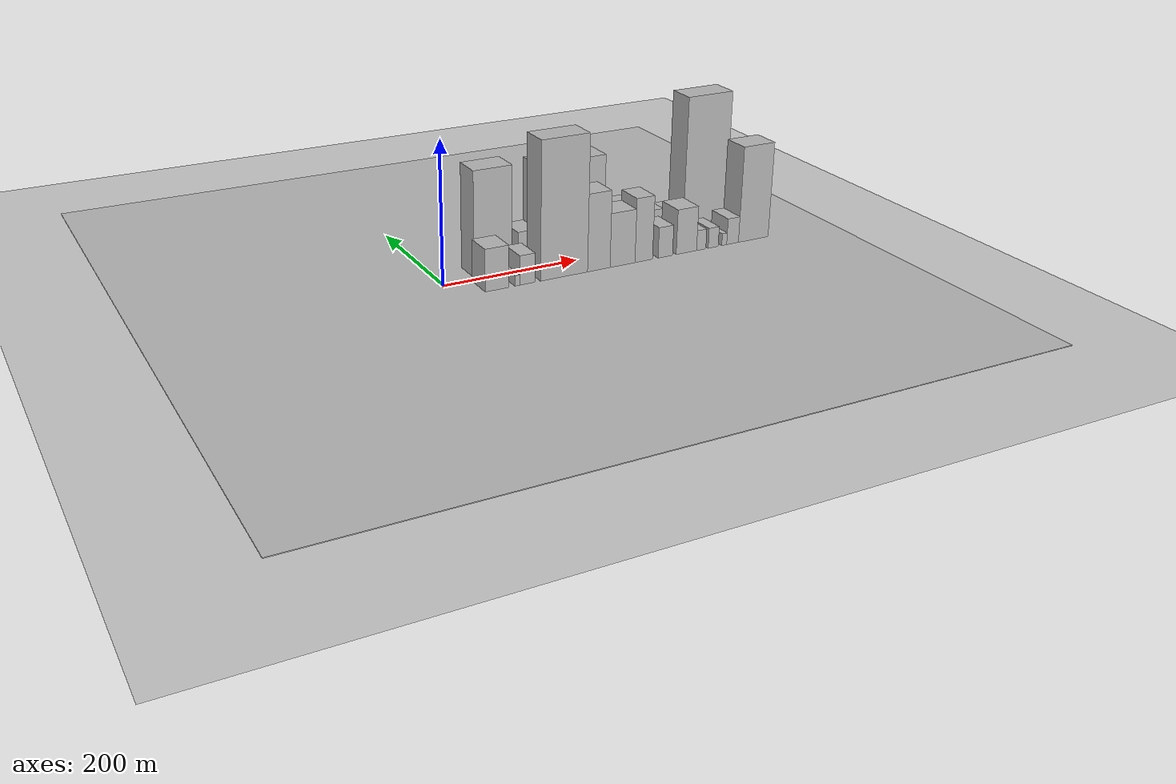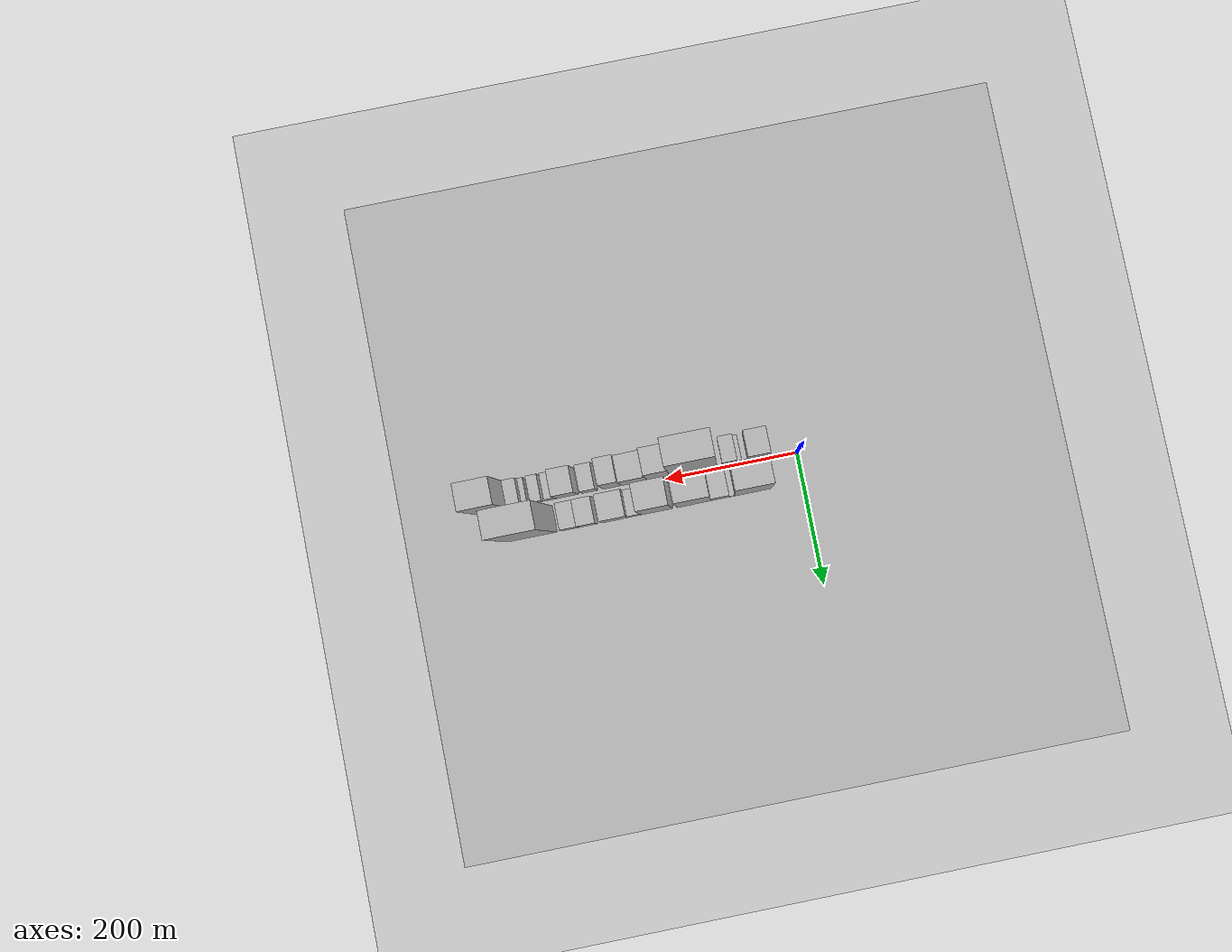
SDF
<?xml version="1.0" encoding="utf-8"?>

<sdf version="1.6">

   <world name="default">

      <gui fullscreen="0">

         <camera name="user_camera">

            <pose>-15 0 4.57585 0 0 0</pose>

            <view_controller>orbit</view_controller>

         </camera>

      </gui>

      <scene>

         <sky>

           <clouds>

             <speed>12</speed>

           </clouds>

         </sky>

         <ambient>0.4 0.4 0.4 1</ambient>

         <background>0.7 0.7 0.7 1</background>

         <shadows>1</shadows>

      </scene>

      <gravity>0 0 -9.8066</gravity>

      <magnetic_field>6e-06 2.3e-05 -4.2e-05</magnetic_field>

      <physics default="0" name="default_physics" type="ode">

         <ode>

            <solver>

               <type>quick</type>

               <iters>10</iters>

               <sor>1.0</sor>

               <use_dynamic_moi_rescaling>0</use_dynamic_moi_rescaling>

            </solver>

            <constraints>

               <cfm>0</cfm>

               <erp>0.2</erp>

               <contact_max_correcting_vel>100</contact_max_correcting_vel>

               <contact_surface_layer>0.001</contact_surface_layer>

            </constraints>

         </ode>

         <max_step_size>0.004</max_step_size>

         <real_time_factor>1</real_time_factor>

         <real_time_update_rate>250</real_time_update_rate>

      </physics>

      <light name="sun" type="directional">

         <cast_shadows>1</cast_shadows>

         <pose>0 0 10 0 0 0</pose>

         <diffuse>0.8 0.8 0.8 1</diffuse>

         <specular>0.2 0.2 0.2 1</specular>

         <attenuation>

            <range>1000</range>

            <constant>0.9</constant>

            <linear>0.01</linear>

            <quadratic>0.001</quadratic>

         </attenuation>

         <direction>-0.5 0.1 -0.9</direction>

      </light>

      <include>

         <name>ground_plane_1</name>

         <uri>model://HANNAS_ground_plane</uri>

         <pose>0 0 0  0 0 0</pose>

      </include>

      <include>

         <name>ground_plane_2</name>

         <uri>model://HANNAS_ground_plane</uri>

         <pose>100 0 0  0 0 0</pose>

      </include>

      <model name="building_1">

         <static>1</static>

         <pose frame="">75.2871 24.5000 0 0.000000 0.000000 1.570796</pose>

         <link name="link">

            <pose frame="">0 0 75.00 0 0 0</pose>

            <collision name="collision">

               <geometry>

                  <box>

                     <size>40.0000 56.5743 150.0000</size>

                  </box>

               </geometry>

               <max_contacts>10</max_contacts>

               <surface>

                  <contact>

                     <ode/>

                  </contact>

                  <bounce/>

                  <friction>

                     <torsional>

                        <ode/>

                     </torsional>

                     <ode/>

                  </friction>

               </surface>

            </collision>

            <visual name="visual">

               <cast_shadows>0</cast_shadows>

               <geometry>

                  <box>

                     <size>40.0000 56.5743 150.0000</size>

                  </box>

               </geometry>

               <material>

                  <script>

                     <uri>model://HANNAS_wall/materials/scripts</uri>

                     <uri>model://HANNAS_wall/materials/textures</uri>

                     <name>vrc/HANNAS_wall</name>

                  </script>

               </material>

            </visual>

            <self_collide>0</self_collide>

            <enable_wind>0</enable_wind>

            <kinematic>0</kinematic>

         </link>

      </model>

      <model name="building_2">

         <static>1</static>

         <pose frame="">107.8261 24.5000 0 0.000000 0.000000 1.570796</pose>

         <link name="link">

            <pose frame="">0 0 9.00 0 0 0</pose>

            <collision name="collision">

               <geometry>

                  <box>

                     <size>40.0000 8.5036 18.0000</size>

                  </box>

               </geometry>

               <max_contacts>10</max_contacts>

               <surface>

                  <contact>

                     <ode/>

                  </contact>

                  <bounce/>

                  <friction>

                     <torsional>

                        <ode/>

                     </torsional>

                     <ode/>

                  </friction>

               </surface>

            </collision>

            <visual name="visual">

               <cast_shadows>0</cast_shadows>

               <geometry>

                  <box>

                     <size>40.0000 8.5036 18.0000</size>

                  </box>

               </geometry>

               <material>

                  <script>

                     <uri>model://HANNAS_wall/materials/scripts</uri>

                     <uri>model://HANNAS_wall/materials/textures</uri>

                     <name>vrc/HANNAS_wall</name>

                  </script>

               </material>

            </visual>

            <self_collide>0</self_collide>

            <enable_wind>0</enable_wind>

            <kinematic>0</kinematic>

         </link>

      </model>

      <model name="building_3">

         <static>1</static>

         <pose frame="">125.9951 24.5000 0 0.000000 0.000000 1.570796</pose>

         <link name="link">

            <pose frame="">0 0 27.00 0 0 0</pose>

            <collision name="collision">

               <geometry>

                  <box>

                     <size>40.0000 27.8346 54.0000</size>

                  </box>

               </geometry>

               <max_contacts>10</max_contacts>

               <surface>

                  <contact>

                     <ode/>

                  </contact>

                  <bounce/>

                  <friction>

                     <torsional>

                        <ode/>

                     </torsional>

                     <ode/>

                  </friction>

               </surface>

            </collision>

            <visual name="visual">

               <cast_shadows>0</cast_shadows>

               <geometry>

                  <box>

                     <size>40.0000 27.8346 54.0000</size>

                  </box>

               </geometry>

               <material>

                  <script>

                     <uri>model://HANNAS_wall/materials/scripts</uri>

                     <uri>model://HANNAS_wall/materials/textures</uri>

                     <name>vrc/HANNAS_wall</name>

                  </script>

               </material>

            </visual>

            <self_collide>0</self_collide>

            <enable_wind>0</enable_wind>

            <kinematic>0</kinematic>

         </link>

      </model>

      <model name="building_4">

         <static>1</static>

         <pose frame="">165.4359 24.5000 0 0.000000 0.000000 1.570796</pose>

         <link name="link">

            <pose frame="">0 0 72.00 0 0 0</pose>

            <collision name="collision">

               <geometry>

                  <box>

                     <size>40.0000 51.0469 144.0000</size>

                  </box>

               </geometry>

               <max_contacts>10</max_contacts>

               <surface>

                  <contact>

                     <ode/>

                  </contact>

                  <bounce/>

                  <friction>

                     <torsional>

                        <ode/>

                     </torsional>

                     <ode/>

                  </friction>

               </surface>

            </collision>

            <visual name="visual">

               <cast_shadows>0</cast_shadows>

               <geometry>

                  <box>

                     <size>40.0000 51.0469 144.0000</size>

                  </box>

               </geometry>

               <material>

                  <script>

                     <uri>model://HANNAS_wall/materials/scripts</uri>

                     <uri>model://HANNAS_wall/materials/textures</uri>

                     <name>vrc/HANNAS_wall</name>

                  </script>

               </material>

            </visual>

            <self_collide>0</self_collide>

            <enable_wind>0</enable_wind>

            <kinematic>0</kinematic>

         </link>

      </model>

      <model name="building_5">

         <static>1</static>

         <pose frame="">221.4254 24.5000 0 0.000000 0.000000 1.570796</pose>

         <link name="link">

            <pose frame="">0 0 72.00 0 0 0</pose>

            <collision name="collision">

               <geometry>

                  <box>

                     <size>40.0000 46.9322 144.0000</size>

                  </box>

               </geometry>

               <max_contacts>10</max_contacts>

               <surface>

                  <contact>

                     <ode/>

                  </contact>

                  <bounce/>

                  <friction>

                     <torsional>

                        <ode/>

                     </torsional>

                     <ode/>

                  </friction>

               </surface>

            </collision>

            <visual name="visual">

               <cast_shadows>0</cast_shadows>

               <geometry>

                  <box>

                     <size>40.0000 46.9322 144.0000</size>

                  </box>

               </geometry>

               <material>

                  <script>

                     <uri>model://HANNAS_wall/materials/scripts</uri>

                     <uri>model://HANNAS_wall/materials/textures</uri>

                     <name>vrc/HANNAS_wall</name>

                  </script>

               </material>

            </visual>

            <self_collide>0</self_collide>

            <enable_wind>0</enable_wind>

            <kinematic>0</kinematic>

         </link>

      </model>

      <model name="building_6">

         <static>1</static>

         <pose frame="">255.1739 24.5000 0 0.000000 0.000000 1.570796</pose>

         <link name="link">

            <pose frame="">0 0 18.00 0 0 0</pose>

            <collision name="collision">

               <geometry>

                  <box>

                     <size>40.0000 20.5647 36.0000</size>

                  </box>

               </geometry>

               <max_contacts>10</max_contacts>

               <surface>

                  <contact>

                     <ode/>

                  </contact>

                  <bounce/>

                  <friction>

                     <torsional>

                        <ode/>

                     </torsional>

                     <ode/>

                  </friction>

               </surface>

            </collision>

            <visual name="visual">

               <cast_shadows>0</cast_shadows>

               <geometry>

                  <box>

                     <size>40.0000 20.5647 36.0000</size>

                  </box>

               </geometry>

               <material>

                  <script>

                     <uri>model://HANNAS_wall/materials/scripts</uri>

                     <uri>model://HANNAS_wall/materials/textures</uri>

                     <name>vrc/HANNAS_wall</name>

                  </script>

               </material>

            </visual>

            <self_collide>0</self_collide>

            <enable_wind>0</enable_wind>

            <kinematic>0</kinematic>

         </link>

      </model>

      <model name="building_7">

         <static>1</static>

         <pose frame="">285.0986 24.5000 0 0.000000 0.000000 1.570796</pose>

         <link name="link">

            <pose frame="">0 0 33.00 0 0 0</pose>

            <collision name="collision">

               <geometry>

                  <box>

                     <size>40.0000 39.2846 66.0000</size>

                  </box>

               </geometry>

               <max_contacts>10</max_contacts>

               <surface>

                  <contact>

                     <ode/>

                  </contact>

                  <bounce/>

                  <friction>

                     <torsional>

                        <ode/>

                     </torsional>

                     <ode/>

                  </friction>

               </surface>

            </collision>

            <visual name="visual">

               <cast_shadows>0</cast_shadows>

               <geometry>

                  <box>

                     <size>40.0000 39.2846 66.0000</size>

                  </box>

               </geometry>

               <material>

                  <script>

                     <uri>model://HANNAS_wall/materials/scripts</uri>

                     <uri>model://HANNAS_wall/materials/textures</uri>

                     <name>vrc/HANNAS_wall</name>

                  </script>

               </material>

            </visual>

            <self_collide>0</self_collide>

            <enable_wind>0</enable_wind>

            <kinematic>0</kinematic>

         </link>

      </model>

      <model name="building_8">

         <static>1</static>

         <pose frame="">325.7034 24.5000 0 0.000000 0.000000 1.570796</pose>

         <link name="link">

            <pose frame="">0 0 25.50 0 0 0</pose>

            <collision name="collision">

               <geometry>

                  <box>

                     <size>40.0000 27.9250 51.0000</size>

                  </box>

               </geometry>

               <max_contacts>10</max_contacts>

               <surface>

                  <contact>

                     <ode/>

                  </contact>

                  <bounce/>

                  <friction>

                     <torsional>

                        <ode/>

                     </torsional>

                     <ode/>

                  </friction>

               </surface>

            </collision>

            <visual name="visual">

               <cast_shadows>0</cast_shadows>

               <geometry>

                  <box>

                     <size>40.0000 27.9250 51.0000</size>

                  </box>

               </geometry>

               <material>

                  <script>

                     <uri>model://HANNAS_wall/materials/scripts</uri>

                     <uri>model://HANNAS_wall/materials/textures</uri>

                     <name>vrc/HANNAS_wall</name>

                  </script>

               </material>

            </visual>

            <self_collide>0</self_collide>

            <enable_wind>0</enable_wind>

            <kinematic>0</kinematic>

         </link>

      </model>

      <model name="building_9">

         <static>1</static>

         <pose frame="">352.3964 24.5000 0 0.000000 0.000000 1.570796</pose>

         <link name="link">

            <pose frame="">0 0 22.50 0 0 0</pose>

            <collision name="collision">

               <geometry>

                  <box>

                     <size>40.0000 25.4611 45.0000</size>

                  </box>

               </geometry>

               <max_contacts>10</max_contacts>

               <surface>

                  <contact>

                     <ode/>

                  </contact>

                  <bounce/>

                  <friction>

                     <torsional>

                        <ode/>

                     </torsional>

                     <ode/>

                  </friction>

               </surface>

            </collision>

            <visual name="visual">

               <cast_shadows>0</cast_shadows>

               <geometry>

                  <box>

                     <size>40.0000 25.4611 45.0000</size>

                  </box>

               </geometry>

               <material>

                  <script>

                     <uri>model://HANNAS_wall/materials/scripts</uri>

                     <uri>model://HANNAS_wall/materials/textures</uri>

                     <name>vrc/HANNAS_wall</name>

                  </script>

               </material>

            </visual>

            <self_collide>0</self_collide>

            <enable_wind>0</enable_wind>

            <kinematic>0</kinematic>

         </link>

      </model>

      <model name="building_10">

         <static>1</static>

         <pose frame="">410.0282 24.5000 0 0.000000 0.000000 1.570796</pose>

         <link name="link">

            <pose frame="">0 0 103.50 0 0 0</pose>

            <collision name="collision">

               <geometry>

                  <box>

                     <size>40.0000 71.8026 207.0000</size>

                  </box>

               </geometry>

               <max_contacts>10</max_contacts>

               <surface>

                  <contact>

                     <ode/>

                  </contact>

                  <bounce/>

                  <friction>

                     <torsional>

                        <ode/>

                     </torsional>

                     <ode/>

                  </friction>

               </surface>

            </collision>

            <visual name="visual">

               <cast_shadows>0</cast_shadows>

               <geometry>

                  <box>

                     <size>40.0000 71.8026 207.0000</size>

                  </box>

               </geometry>

               <material>

                  <script>

                     <uri>model://HANNAS_wall/materials/scripts</uri>

                     <uri>model://HANNAS_wall/materials/textures</uri>

                     <name>vrc/HANNAS_wall</name>

                  </script>

               </material>

            </visual>

            <self_collide>0</self_collide>

            <enable_wind>0</enable_wind>

            <kinematic>0</kinematic>

         </link>

      </model>

      <model name="building_11">

         <static>1</static>

         <pose frame="">57.0972 -24.5000 0 0.000000 0.000000 1.570796</pose>

         <link name="link">

            <pose frame="">0 0 30.00 0 0 0</pose>

            <collision name="collision">

               <geometry>

                  <box>

                     <size>40.0000 34.1944 60.0000</size>

                  </box>

               </geometry>

               <max_contacts>10</max_contacts>

               <surface>

                  <contact>

                     <ode/>

                  </contact>

                  <bounce/>

                  <friction>

                     <torsional>

                        <ode/>

                     </torsional>

                     <ode/>

                  </friction>

               </surface>

            </collision>

            <visual name="visual">

               <cast_shadows>0</cast_shadows>

               <geometry>

                  <box>

                     <size>40.0000 34.1944 60.0000</size>

                  </box>

               </geometry>

               <material>

                  <script>

                     <uri>model://HANNAS_wall/materials/scripts</uri>

                     <uri>model://HANNAS_wall/materials/textures</uri>

                     <name>vrc/HANNAS_wall</name>

                  </script>

               </material>

            </visual>

            <self_collide>0</self_collide>

            <enable_wind>0</enable_wind>

            <kinematic>0</kinematic>

         </link>

      </model>

      <model name="building_12">

         <static>1</static>

         <pose frame="">86.7351 -24.5000 0 0.000000 0.000000 1.570796</pose>

         <link name="link">

            <pose frame="">0 0 7.50 0 0 0</pose>

            <collision name="collision">

               <geometry>

                  <box>

                     <size>40.0000 7.0815 15.0000</size>

                  </box>

               </geometry>

               <max_contacts>10</max_contacts>

               <surface>

                  <contact>

                     <ode/>

                  </contact>

                  <bounce/>

                  <friction>

                     <torsional>

                        <ode/>

                     </torsional>

                     <ode/>

                  </friction>

               </surface>

            </collision>

            <visual name="visual">

               <cast_shadows>0</cast_shadows>

               <geometry>

                  <box>

                     <size>40.0000 7.0815 15.0000</size>

                  </box>

               </geometry>

               <material>

                  <script>

                     <uri>model://HANNAS_wall/materials/scripts</uri>

                     <uri>model://HANNAS_wall/materials/textures</uri>

                     <name>vrc/HANNAS_wall</name>

                  </script>

               </material>

            </visual>

            <self_collide>0</self_collide>

            <enable_wind>0</enable_wind>

            <kinematic>0</kinematic>

         </link>

      </model>

      <model name="building_13">

         <static>1</static>

         <pose frame="">101.5798 -24.5000 0 0.000000 0.000000 1.570796</pose>

         <link name="link">

            <pose frame="">0 0 21.00 0 0 0</pose>

            <collision name="collision">

               <geometry>

                  <box>

                     <size>40.0000 22.6079 42.0000</size>

                  </box>

               </geometry>

               <max_contacts>10</max_contacts>

               <surface>

                  <contact>

                     <ode/>

                  </contact>

                  <bounce/>

                  <friction>

                     <torsional>

                        <ode/>

                     </torsional>

                     <ode/>

                  </friction>

               </surface>

            </collision>

            <visual name="visual">

               <cast_shadows>0</cast_shadows>

               <geometry>

                  <box>

                     <size>40.0000 22.6079 42.0000</size>

                  </box>

               </geometry>

               <material>

                  <script>

                     <uri>model://HANNAS_wall/materials/scripts</uri>

                     <uri>model://HANNAS_wall/materials/textures</uri>

                     <name>vrc/HANNAS_wall</name>

                  </script>

               </material>

            </visual>

            <self_collide>0</self_collide>

            <enable_wind>0</enable_wind>

            <kinematic>0</kinematic>

         </link>

      </model>

      <model name="building_14">

         <static>1</static>

         <pose frame="">156.4383 -24.5000 0 0.000000 0.000000 1.570796</pose>

         <link name="link">

            <pose frame="">0 0 97.50 0 0 0</pose>

            <collision name="collision">

               <geometry>

                  <box>

                     <size>40.0000 71.1091 195.0000</size>

                  </box>

               </geometry>

               <max_contacts>10</max_contacts>

               <surface>

                  <contact>

                     <ode/>

                  </contact>

                  <bounce/>

                  <friction>

                     <torsional>

                        <ode/>

                     </torsional>

                     <ode/>

                  </friction>

               </surface>

            </collision>

            <visual name="visual">

               <cast_shadows>0</cast_shadows>

               <geometry>

                  <box>

                     <size>40.0000 71.1091 195.0000</size>

                  </box>

               </geometry>

               <material>

                  <script>

                     <uri>model://HANNAS_wall/materials/scripts</uri>

                     <uri>model://HANNAS_wall/materials/textures</uri>

                     <name>vrc/HANNAS_wall</name>

                  </script>

               </material>

            </visual>

            <self_collide>0</self_collide>

            <enable_wind>0</enable_wind>

            <kinematic>0</kinematic>

         </link>

      </model>

      <model name="building_15">

         <static>1</static>

         <pose frame="">209.4007 -24.5000 0 0.000000 0.000000 1.570796</pose>

         <link name="link">

            <pose frame="">0 0 55.50 0 0 0</pose>

            <collision name="collision">

               <geometry>

                  <box>

                     <size>40.0000 34.8155 111.0000</size>

                  </box>

               </geometry>

               <max_contacts>10</max_contacts>

               <surface>

                  <contact>

                     <ode/>

                  </contact>

                  <bounce/>

                  <friction>

                     <torsional>

                        <ode/>

                     </torsional>

                     <ode/>

                  </friction>

               </surface>

            </collision>

            <visual name="visual">

               <cast_shadows>0</cast_shadows>

               <geometry>

                  <box>

                     <size>40.0000 34.8155 111.0000</size>

                  </box>

               </geometry>

               <material>

                  <script>

                     <uri>model://HANNAS_wall/materials/scripts</uri>

                     <uri>model://HANNAS_wall/materials/textures</uri>

                     <name>vrc/HANNAS_wall</name>

                  </script>

               </material>

            </visual>

            <self_collide>0</self_collide>

            <enable_wind>0</enable_wind>

            <kinematic>0</kinematic>

         </link>

      </model>

      <model name="building_16">

         <static>1</static>

         <pose frame="">246.3807 -24.5000 0 0.000000 0.000000 1.570796</pose>

         <link name="link">

            <pose frame="">0 0 39.00 0 0 0</pose>

            <collision name="collision">

               <geometry>

                  <box>

                     <size>40.0000 39.1446 78.0000</size>

                  </box>

               </geometry>

               <max_contacts>10</max_contacts>

               <surface>

                  <contact>

                     <ode/>

                  </contact>

                  <bounce/>

                  <friction>

                     <torsional>

                        <ode/>

                     </torsional>

                     <ode/>

                  </friction>

               </surface>

            </collision>

            <visual name="visual">

               <cast_shadows>0</cast_shadows>

               <geometry>

                  <box>

                     <size>40.0000 39.1446 78.0000</size>

                  </box>

               </geometry>

               <material>

                  <script>

                     <uri>model://HANNAS_wall/materials/scripts</uri>

                     <uri>model://HANNAS_wall/materials/textures</uri>

                     <name>vrc/HANNAS_wall</name>

                  </script>

               </material>

            </visual>

            <self_collide>0</self_collide>

            <enable_wind>0</enable_wind>

            <kinematic>0</kinematic>

         </link>

      </model>

      <model name="building_17">

         <static>1</static>

         <pose frame="">279.9418 -24.5000 0 0.000000 0.000000 1.570796</pose>

         <link name="link">

            <pose frame="">0 0 46.50 0 0 0</pose>

            <collision name="collision">

               <geometry>

                  <box>

                     <size>40.0000 27.9776 93.0000</size>

                  </box>

               </geometry>

               <max_contacts>10</max_contacts>

               <surface>

                  <contact>

                     <ode/>

                  </contact>

                  <bounce/>

                  <friction>

                     <torsional>

                        <ode/>

                     </torsional>

                     <ode/>

                  </friction>

               </surface>

            </collision>

            <visual name="visual">

               <cast_shadows>0</cast_shadows>

               <geometry>

                  <box>

                     <size>40.0000 27.9776 93.0000</size>

                  </box>

               </geometry>

               <material>

                  <script>

                     <uri>model://HANNAS_wall/materials/scripts</uri>

                     <uri>model://HANNAS_wall/materials/textures</uri>

                     <name>vrc/HANNAS_wall</name>

                  </script>

               </material>

            </visual>

            <self_collide>0</self_collide>

            <enable_wind>0</enable_wind>

            <kinematic>0</kinematic>

         </link>

      </model>

      <model name="building_18">

         <static>1</static>

         <pose frame="">314.5903 -24.5000 0 0.000000 0.000000 1.570796</pose>

         <link name="link">

            <pose frame="">0 0 22.50 0 0 0</pose>

            <collision name="collision">

               <geometry>

                  <box>

                     <size>40.0000 23.3193 45.0000</size>

                  </box>

               </geometry>

               <max_contacts>10</max_contacts>

               <surface>

                  <contact>

                     <ode/>

                  </contact>

                  <bounce/>

                  <friction>

                     <torsional>

                        <ode/>

                     </torsional>

                     <ode/>

                  </friction>

               </surface>

            </collision>

            <visual name="visual">

               <cast_shadows>0</cast_shadows>

               <geometry>

                  <box>

                     <size>40.0000 23.3193 45.0000</size>

                  </box>

               </geometry>

               <material>

                  <script>

                     <uri>model://HANNAS_wall/materials/scripts</uri>

                     <uri>model://HANNAS_wall/materials/textures</uri>

                     <name>vrc/HANNAS_wall</name>

                  </script>

               </material>

            </visual>

            <self_collide>0</self_collide>

            <enable_wind>0</enable_wind>

            <kinematic>0</kinematic>

         </link>

      </model>

      <model name="building_19">

         <static>1</static>

         <pose frame="">348.9699 -24.5000 0 0.000000 0.000000 1.570796</pose>

         <link name="link">

            <pose frame="">0 0 33.00 0 0 0</pose>

            <collision name="collision">

               <geometry>

                  <box>

                     <size>40.0000 33.4400 66.0000</size>

                  </box>

               </geometry>

               <max_contacts>10</max_contacts>

               <surface>

                  <contact>

                     <ode/>

                  </contact>

                  <bounce/>

                  <friction>

                     <torsional>

                        <ode/>

                     </torsional>

                     <ode/>

                  </friction>

               </surface>

            </collision>

            <visual name="visual">

               <cast_shadows>0</cast_shadows>

               <geometry>

                  <box>

                     <size>40.0000 33.4400 66.0000</size>

                  </box>

               </geometry>

               <material>

                  <script>

                     <uri>model://HANNAS_wall/materials/scripts</uri>

                     <uri>model://HANNAS_wall/materials/textures</uri>

                     <name>vrc/HANNAS_wall</name>

                  </script>

               </material>

            </visual>

            <self_collide>0</self_collide>

            <enable_wind>0</enable_wind>

            <kinematic>0</kinematic>

         </link>

      </model>

      <model name="building_20">

         <static>1</static>

         <pose frame="">373.3785 -24.5000 0 0.000000 0.000000 1.570796</pose>

         <link name="link">

            <pose frame="">0 0 15.00 0 0 0</pose>

            <collision name="collision">

               <geometry>

                  <box>

                     <size>40.0000 15.3773 30.0000</size>

                  </box>

               </geometry>

               <max_contacts>10</max_contacts>

               <surface>

                  <contact>

                     <ode/>

                  </contact>

                  <bounce/>

                  <friction>

                     <torsional>

                        <ode/>

                     </torsional>

                     <ode/>

                  </friction>

               </surface>

            </collision>

            <visual name="visual">

               <cast_shadows>0</cast_shadows>

               <geometry>

                  <box>

                     <size>40.0000 15.3773 30.0000</size>

                  </box>

               </geometry>

               <material>

                  <script>

                     <uri>model://HANNAS_wall/materials/scripts</uri>

                     <uri>model://HANNAS_wall/materials/textures</uri>

                     <name>vrc/HANNAS_wall</name>

                  </script>

               </material>

            </visual>

            <self_collide>0</self_collide>

            <enable_wind>0</enable_wind>

            <kinematic>0</kinematic>

         </link>

      </model>

      <model name="building_21">

         <static>1</static>

         <pose frame="">393.4157 -24.5000 0 0.000000 0.000000 1.570796</pose>

         <link name="link">

            <pose frame="">0 0 15.00 0 0 0</pose>

            <collision name="collision">

               <geometry>

                  <box>

                     <size>40.0000 16.6970 30.0000</size>

                  </box>

               </geometry>

               <max_contacts>10</max_contacts>

               <surface>

                  <contact>

                     <ode/>

                  </contact>

                  <bounce/>

                  <friction>

                     <torsional>

                        <ode/>

                     </torsional>

                     <ode/>

                  </friction>

               </surface>

            </collision>

            <visual name="visual">

               <cast_shadows>0</cast_shadows>

               <geometry>

                  <box>

                     <size>40.0000 16.6970 30.0000</size>

                  </box>

               </geometry>

               <material>

                  <script>

                     <uri>model://HANNAS_wall/materials/scripts</uri>

                     <uri>model://HANNAS_wall/materials/textures</uri>

                     <name>vrc/HANNAS_wall</name>

                  </script>

               </material>

            </visual>

            <self_collide>0</self_collide>

            <enable_wind>0</enable_wind>

            <kinematic>0</kinematic>

         </link>

      </model>

      <model name="building_22">

         <static>1</static>

         <pose frame="">411.9320 -24.5000 0 0.000000 0.000000 1.570796</pose>

         <link name="link">

            <pose frame="">0 0 9.00 0 0 0</pose>

            <collision name="collision">

               <geometry>

                  <box>

                     <size>40.0000 8.3356 18.0000</size>

                  </box>

               </geometry>

               <max_contacts>10</max_contacts>

               <surface>

                  <contact>

                     <ode/>

                  </contact>

                  <bounce/>

                  <friction>

                     <torsional>

                        <ode/>

                     </torsional>

                     <ode/>

                  </friction>

               </surface>

            </collision>

            <visual name="visual">

               <cast_shadows>0</cast_shadows>

               <geometry>

                  <box>

                     <size>40.0000 8.3356 18.0000</size>

                  </box>

               </geometry>

               <material>

                  <script>

                     <uri>model://HANNAS_wall/materials/scripts</uri>

                     <uri>model://HANNAS_wall/materials/textures</uri>

                     <name>vrc/HANNAS_wall</name>

                  </script>

               </material>

            </visual>

            <self_collide>0</self_collide>

            <enable_wind>0</enable_wind>

            <kinematic>0</kinematic>

         </link>

      </model>

      <model name="building_23">

         <static>1</static>

         <pose frame="">426.0377 -24.5000 0 0.000000 0.000000 1.570796</pose>

         <link name="link">

            <pose frame="">0 0 19.50 0 0 0</pose>

            <collision name="collision">

               <geometry>

                  <box>

                     <size>40.0000 19.8758 39.0000</size>

                  </box>

               </geometry>

               <max_contacts>10</max_contacts>

               <surface>

                  <contact>

                     <ode/>

                  </contact>

                  <bounce/>

                  <friction>

                     <torsional>

                        <ode/>

                     </torsional>

                     <ode/>

                  </friction>

               </surface>

            </collision>

            <visual name="visual">

               <cast_shadows>0</cast_shadows>

               <geometry>

                  <box>

                     <size>40.0000 19.8758 39.0000</size>

                  </box>

               </geometry>

               <material>

                  <script>

                     <uri>model://HANNAS_wall/materials/scripts</uri>

                     <uri>model://HANNAS_wall/materials/textures</uri>

                     <name>vrc/HANNAS_wall</name>

                  </script>

               </material>

            </visual>

            <self_collide>0</self_collide>

            <enable_wind>0</enable_wind>

            <kinematic>0</kinematic>

         </link>

      </model>

      <model name="building_24">

         <static>1</static>

         <pose frame="">461.4055 -24.5000 0 0.000000 0.000000 1.570796</pose>

         <link name="link">

            <pose frame="">0 0 70.50 0 0 0</pose>

            <collision name="collision">

               <geometry>

                  <box>

                     <size>40.0000 50.8599 141.0000</size>

                  </box>

               </geometry>

               <max_contacts>10</max_contacts>

               <surface>

                  <contact>

                     <ode/>

                  </contact>

                  <bounce/>

                  <friction>

                     <torsional>

                        <ode/>

                     </torsional>

                     <ode/>

                  </friction>

               </surface>

            </collision>

            <visual name="visual">

               <cast_shadows>0</cast_shadows>

               <geometry>

                  <box>

                     <size>40.0000 50.8599 141.0000</size>

                  </box>

               </geometry>

               <material>

                  <script>

                     <uri>model://HANNAS_wall/materials/scripts</uri>

                     <uri>model://HANNAS_wall/materials/textures</uri>

                     <name>vrc/HANNAS_wall</name>

                  </script>

               </material>

            </visual>

            <self_collide>0</self_collide>

            <enable_wind>0</enable_wind>

            <kinematic>0</kinematic>

         </link>

      </model>

   </world>

</sdf>

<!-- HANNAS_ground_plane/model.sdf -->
<sdf version="1.4">
<model name="HANNAS_ground_plane">
  <static>true</static>
    <link name="link">
      <collision name="collision">
        <geometry>
          <plane>
            <normal>0 0 1</normal>
            <size>1000 1000</size>
          </plane>
        </geometry>
        <surface>
          <friction>
            <ode>
              <mu>100</mu>
              <mu2>50</mu2>
            </ode>
          </friction>
        </surface>
      </collision>
      <visual name="visual">
        <cast_shadows>false</cast_shadows>
        <geometry>
          <plane>
            <normal>0 0 1</normal>
            <size>1000 1000</size>
          </plane>
        </geometry>
        <material>
          <script>
            <uri>model://HANNAS_ground_plane/materials/scripts/HANNAS_ground_plane.material</uri>
	    <uri>model://HANNAS_ground_plane/materials/textures</uri>
            <name>HANNASGroundPlane/Image</name>
          </script>
        </material>
      </visual>
    </link>
  </model>
</sdf>
